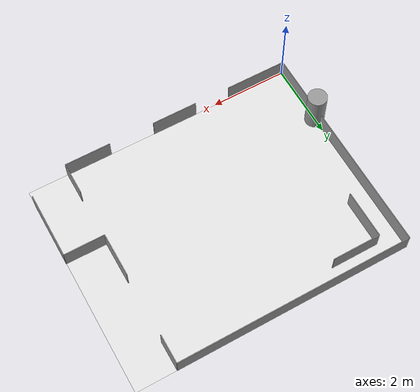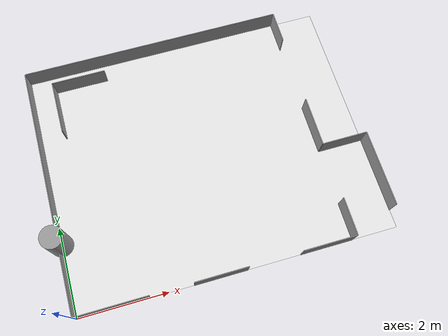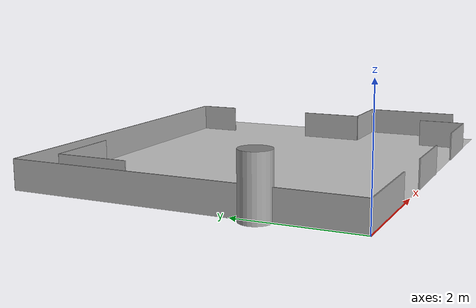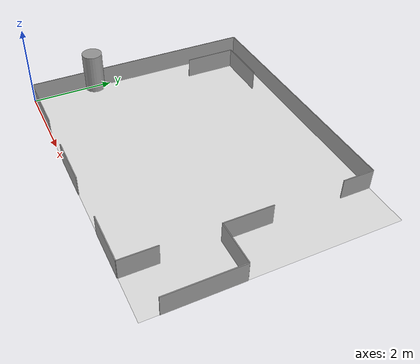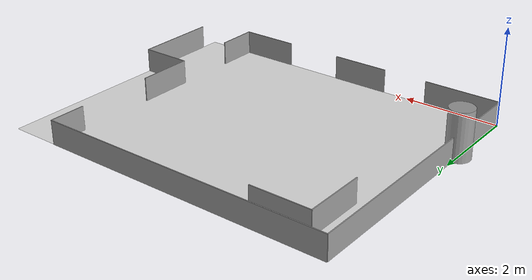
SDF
<?xml version="1.0" ?>
<sdf version="1.5">
  <model name="Carologistics-RCLL-Training">
    <pose>0 0 0 0 0 0</pose>
    <static>true</static>
    <link name="field">
      <pose>3.6 2.85 0.01 0 0 0</pose>
      <collision name="collision">
        <geometry>
          <plane>
            <normal>0 0 1</normal>
            <size>7.20 5.7</size>
          </plane>
        </geometry>
        <surface>
          <friction>
            <ode>
              <mu>100</mu>
              <mu2>50</mu2>
            </ode>
          </friction>
        </surface>
      </collision>
      <visual name="carpet">
        <cast_shadows>false</cast_shadows>
        <geometry>
          <plane>
            <normal>0 0 1</normal>
            <size>7.20 5.7</size>
          </plane>
        </geometry>
        <material>
	  <ambient>0.9 0.9 0.9 0.9</ambient>
	  <diffuse>0.9 0.9 0.9 0.9</diffuse>
        </material>
      </visual>
    </link>
    <link name="pillar">
      <pose>0 1.6 0.5 0 0 0</pose>
      <visual name="pillar-visual">
        <geometry>
          <cylinder>
            <radius>0.25</radius>
            <length>1</length>
          </cylinder>
        </geometry>
        <cast_shadows>false</cast_shadows>
        <material>
	  <script>
	    <uri>file://media/materials/scripts/gazebo.material</uri>
	    <name>Gazebo/Grey</name>
	  </script>
        </material>
      </visual>
      <collision name="pillar-collision">
        <geometry>
          <cylinder>
            <radius>0.25</radius>
            <length>1</length>
          </cylinder>
        </geometry>
      </collision>
    </link>
    <link name="wall_left">
      <pose>0 2.85 0.25 0 0 0</pose>
      <visual name="wall_bottom_middle_left-visual">
        <geometry>
          <box>
            <size>.02 5.7 .5</size>
          </box>
        </geometry>
        <cast_shadows>false</cast_shadows>
        <material>
	  <script>
	    <uri>file://media/materials/scripts/gazebo.material</uri>
	    <name>Gazebo/Grey</name>
	  </script>
        </material>
      </visual>
      <collision name="wall_bottom_middle_left-collision">
        <geometry>
          <box>
            <size>.02 5.7 .5</size>
          </box>
        </geometry>
      </collision>
    </link>
    <link name="wall_top">
      <pose>3.075 5.7 0.25 0 0 0</pose>
      <visual name="wall_top-visual">
        <geometry>
          <box>
            <size>6.15 .02 .5</size>
          </box>
        </geometry>
        <cast_shadows>false</cast_shadows>
        <material>
	  <script>
	    <uri>file://media/materials/scripts/gazebo.material</uri>
	    <name>Gazebo/Grey</name>
	  </script>
        </material>
      </visual>
      <collision name="wall_top-collision">
        <geometry>
          <box>
            <size>6.15 .02 .5</size>
          </box>
        </geometry>
      </collision>
    </link>
    <link name="wall_right_top">
      <pose>6.15 5.325 0.25 0 0 0</pose>
      <visual name="wall_right_top-visual">
        <geometry>
          <box>
            <size>.02 0.75 .5</size>
          </box>
        </geometry>
        <cast_shadows>false</cast_shadows>
        <material>
	  <script>
	    <uri>file://media/materials/scripts/gazebo.material</uri>
	    <name>Gazebo/Grey</name>
	  </script>
        </material>
      </visual>
      <collision name="wall_right_top-collision">
        <geometry>
          <box>
            <size>.02 0.75 .5</size>
          </box>
        </geometry>
      </collision>
    </link>
    <link name="wall_right_middle">
      <pose>6.15 2.725 0.25 0 0 0</pose>
      <visual name="wall_right_middle-visual">
        <geometry>
          <box>
            <size>.02 1.15 .5</size>
          </box>
        </geometry>
        <cast_shadows>false</cast_shadows>
        <material>
	  <script>
	    <uri>file://media/materials/scripts/gazebo.material</uri>
	    <name>Gazebo/Grey</name>
	  </script>
        </material>
      </visual>
      <collision name="wall_right_middle-collision">
        <geometry>
          <box>
            <size>.02 1.15 .5</size>
          </box>
        </geometry>
      </collision>
    </link>
    <link name="wall_right_quer">
      <pose>6.675 2.15 0.25 0 0 0</pose>
      <visual name="wall_right_quer-visual">
        <geometry>
          <box>
            <size>1.05 .02 .5</size>
          </box>
        </geometry>
        <cast_shadows>false</cast_shadows>
        <material>
	  <script>
	    <uri>file://media/materials/scripts/gazebo.material</uri>
	    <name>Gazebo/Grey</name>
	  </script>
        </material>
      </visual>
      <collision name="wall_right_quer-collision">
        <geometry>
          <box>
            <size>1.05 .02 .5</size>
          </box>
        </geometry>
      </collision>
    </link>
    <link name="wall_right_bottom">
      <pose>6.15 0.425 0.25 0 0 0</pose>
      <visual name="wall_right_bottom-visual">
        <geometry>
          <box>
            <size>.02 0.85 .5</size>
          </box>
        </geometry>
        <cast_shadows>false</cast_shadows>
        <material>
	  <script>
	    <uri>file://media/materials/scripts/gazebo.material</uri>
	    <name>Gazebo/Grey</name>
	  </script>
        </material>
      </visual>
      <collision name="wall_right_bottom-collision">
        <geometry>
          <box>
            <size>.02 0.85 .5</size>
          </box>
        </geometry>
      </collision>
    </link>
    <link name="wall_rightest">
      <pose>7.2 1.275 0.25 0 0 0</pose>
      <visual name="wall_rightest-visual">
        <geometry>
          <box>
            <size>.02 1.75 .5</size>
          </box>
        </geometry>
        <cast_shadows>false</cast_shadows>
        <material>
	  <script>
	    <uri>file://media/materials/scripts/gazebo.material</uri>
	    <name>Gazebo/Grey</name>
	  </script>
        </material>
      </visual>
      <collision name="wall_rightest-collision">
        <geometry>
          <box>
            <size>.02 1.75 .5</size>
          </box>
        </geometry>
      </collision>
    </link>
    <link name="wall_bottom_left">
      <pose>0.8 0 0.25 0 0 0</pose>
      <visual name="wall_bottom_left-visual">
        <geometry>
          <box>
            <size>1.6 .02 .5</size>
          </box>
        </geometry>
        <cast_shadows>false</cast_shadows>
        <material>
	  <script>
	    <uri>file://media/materials/scripts/gazebo.material</uri>
	    <name>Gazebo/Grey</name>
	  </script>
        </material>
      </visual>
      <collision name="wall_bottom_left-collision">
        <geometry>
          <box>
            <size>1.6 .02 .5</size>
          </box>
        </geometry>
      </collision>
    </link>
    <link name="wall_bottom_middle">
      <pose>3.15 0 0.25 0 0 0</pose>
      <visual name="wall_bottom_middle-visual">
        <geometry>
          <box>
            <size>1.2 .02 .5</size>
          </box>
        </geometry>
        <cast_shadows>false</cast_shadows>
        <material>
	  <script>
	    <uri>file://media/materials/scripts/gazebo.material</uri>
	    <name>Gazebo/Grey</name>
	  </script>
        </material>
      </visual>
      <collision name="wall_bottom_middle-collision">
        <geometry>
          <box>
            <size>1.2 .02 .5</size>
          </box>
        </geometry>
      </collision>
    </link>
    <link name="wall_bottom_right">
      <pose>5.55 0 0.25 0 0 0</pose>
      <visual name="wall_bottom_right-visual">
        <geometry>
          <box>
            <size>1.2 .02 .5</size>
          </box>
        </geometry>
        <cast_shadows>false</cast_shadows>
        <material>
	  <script>
	    <uri>file://media/materials/scripts/gazebo.material</uri>
	    <name>Gazebo/Grey</name>
	  </script>
        </material>
      </visual>
      <collision name="wall_bottom_right-collision">
        <geometry>
          <box>
            <size>1.2 .02 .5</size>
          </box>
        </geometry>
      </collision>
    </link>
    <link name="wall_inside_left">
      <pose>0.575 4.675 0.25 0 0 0</pose>
      <visual name="wall_inside_left-visual">
        <geometry>
          <box>
            <size>.02 1.25 .5</size>
          </box>
        </geometry>
        <cast_shadows>false</cast_shadows>
        <material>
	  <script>
	    <uri>file://media/materials/scripts/gazebo.material</uri>
	    <name>Gazebo/Grey</name>
	  </script>
        </material>
      </visual>
      <collision name="wall_inside_left-collision">
        <geometry>
          <box>
            <size>.02 1.25 .5</size>
          </box>
        </geometry>
      </collision>
    </link>
    <link name="wall_inside_right">
      <pose>1.2 5.3 0.25 0 0 0</pose>
      <visual name="wall_inside_right-visual">
        <geometry>
          <box>
            <size>1.25 .02 .5</size>
          </box>
        </geometry>
        <cast_shadows>false</cast_shadows>
        <material>
	  <script>
	    <uri>file://media/materials/scripts/gazebo.material</uri>
	    <name>Gazebo/Grey</name>
	  </script>
        </material>
      </visual>
      <collision name="wall_inside_right-collision">
        <geometry>
          <box>
            <size>1.25 .02 .5</size>
          </box>
        </geometry>
      </collision>
    </link>
  </model>
</sdf>
